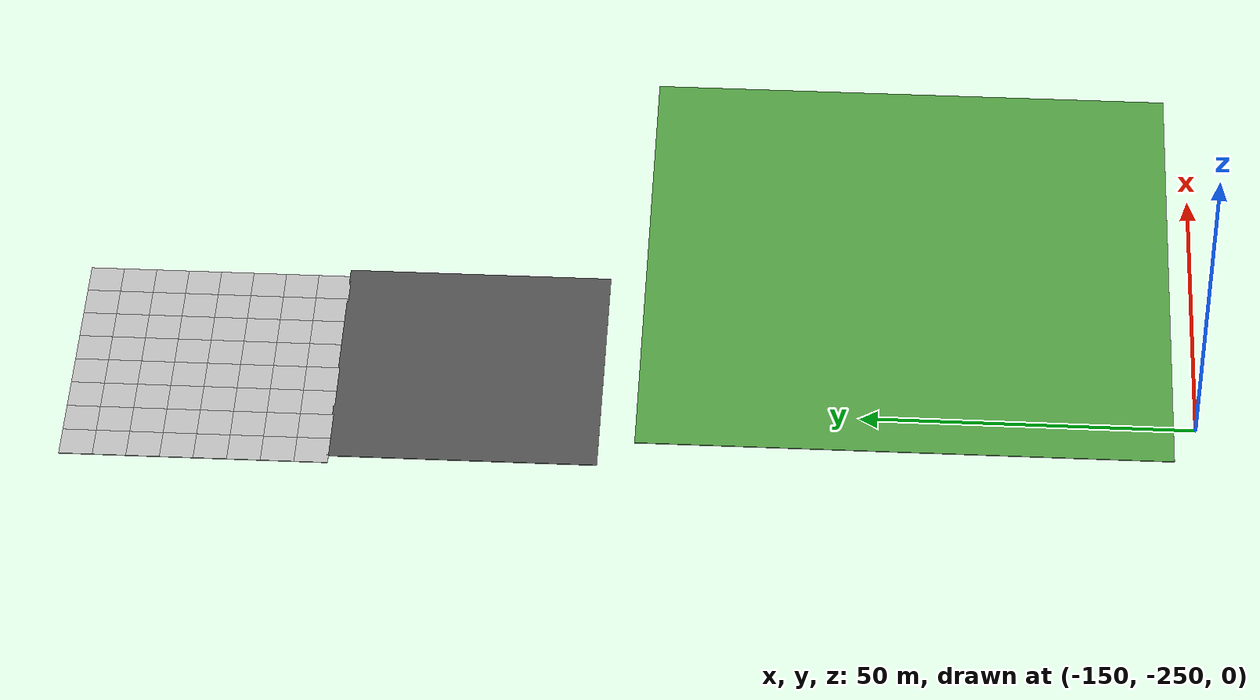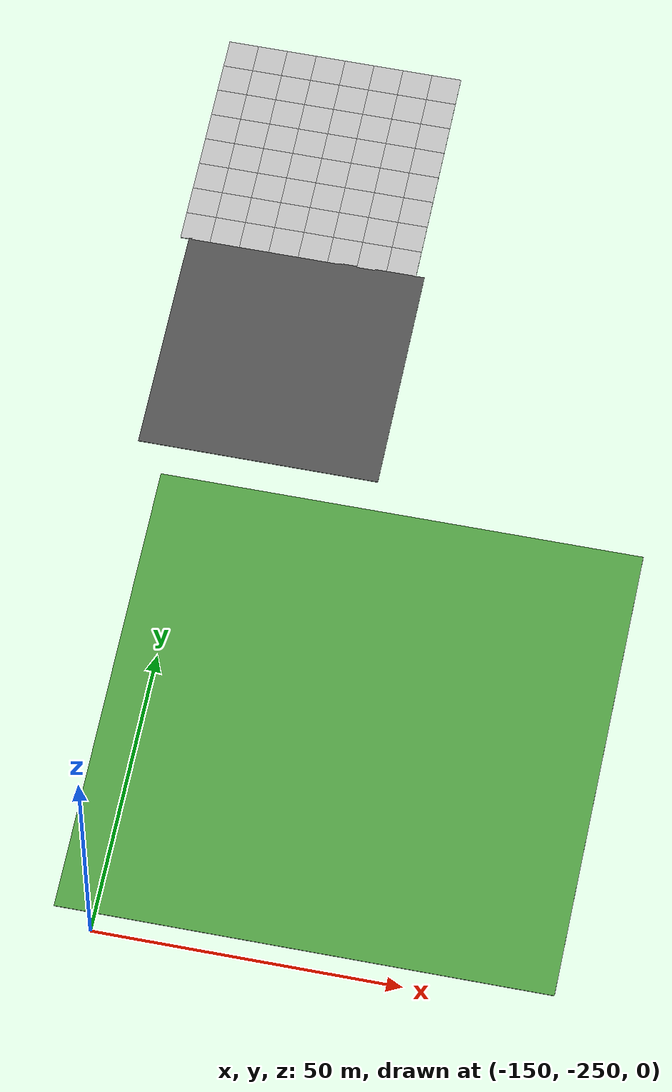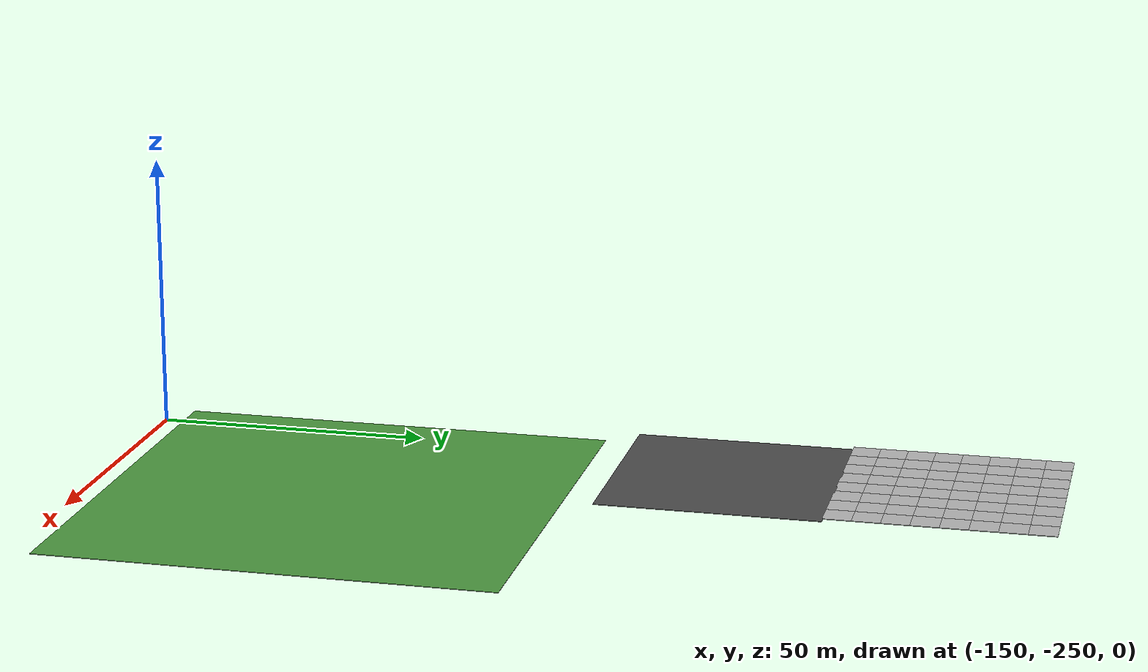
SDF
<sdf version="1.7">
 <world name="default">
  <model name="asphalt_plane_40x40_2">
   <pose>-141.521 -141.375 -0.05 0 -0 0</pose>
   <static>1</static>
   <link name="link">
    <collision name="collision"><geometry><box><size>40 40 0.1</size></box></geometry></collision>
    <visual name="visual">
     <cast_shadows>0</cast_shadows>
     <geometry><box><size>40 40 0.1</size></box></geometry>
     <material>
      <script>
       <uri>model://asphalt_plane_40x40/materials/scripts</uri>
       <uri>model://asphalt_plane_40x40/materials/textures</uri>
       <name>vrc/asphalt</name>
      </script>
     </material>
    </visual>
   </link>
  </model>
  <model name="grass_plane_80x80_11">
   <pose>-116.565 -206.733 -0.05 0 -0 0</pose>
   <static>1</static>
   <link name="link">
    <collision name="collision"><geometry><box><size>80 80 0.1</size></box></geometry></collision>
    <visual name="grass">
     <cast_shadows>0</cast_shadows>
     <geometry><box><size>80 80 0.1</size></box></geometry>
     <material>
      <script><uri>file://media/materials/scripts/gazebo.material</uri><name>Gazebo/Grass</name></script>
     </material>
    </visual>
   </link>
  </model>
  <model name="mud_plane_40x40_7">
   <model name="mud_plane_20x20">
    <model name="mud_plane">
     <static>1</static>
     <link name="link">
      <collision name="collision"><geometry><box><size>10 10 0.1</size></box></geometry></collision>
      <visual name="visual_1">
       <pose>-2.5 2.5 -0.05 0 -0 0</pose>
       <cast_shadows>0</cast_shadows>
       <geometry><box><size>5 5 0.1</size></box></geometry>
       <material>
        <script>
         <uri>model://mud_plane/materials/scripts</uri>
         <uri>model://mud_plane/materials/textures</uri>
         <name>vrc/mud</name>
        </script>
       </material>
      </visual>
      <visual name="visual_2">
       <pose>2.5 2.5 -0.05 0 -0 0</pose>
       <cast_shadows>0</cast_shadows>
       <geometry><box><size>5 5 0.1</size></box></geometry>
       <material>
        <script>
         <uri>model://mud_plane/materials/scripts</uri>
         <uri>model://mud_plane/materials/textures</uri>
         <name>vrc/mud</name>
        </script>
       </material>
      </visual>
      <visual name="visual_3">
       <pose>2.5 -2.5 -0.05 0 -0 0</pose>
       <cast_shadows>0</cast_shadows>
       <geometry><box><size>5 5 0.1</size></box></geometry>
       <material>
        <script>
         <uri>model://mud_plane/materials/scripts</uri>
         <uri>model://mud_plane/materials/textures</uri>
         <name>vrc/mud</name>
        </script>
       </material>
      </visual>
      <visual name="visual_4">
       <pose>-2.5 -2.5 -0.05 0 -0 0</pose>
       <cast_shadows>0</cast_shadows>
       <geometry><box><size>5 5 0.1</size></box></geometry>
       <material>
        <script>
         <uri>model://mud_plane/materials/scripts</uri>
         <uri>model://mud_plane/materials/textures</uri>
         <name>vrc/mud</name>
        </script>
       </material>
      </visual>
     </link>
     <pose>-4.99986 -4.99991 0 0 -0 0</pose>
    </model>
    <model name="mud_plane_0">
     <static>1</static>
     <link name="link">
      <collision name="collision"><geometry><box><size>10 10 0.1</size></box></geometry></collision>
      <visual name="visual_1">
       <pose>-2.5 2.5 -0.05 0 -0 0</pose>
       <cast_shadows>0</cast_shadows>
       <geometry><box><size>5 5 0.1</size></box></geometry>
       <material>
        <script>
         <uri>model://mud_plane/materials/scripts</uri>
         <uri>model://mud_plane/materials/textures</uri>
         <name>vrc/mud</name>
        </script>
       </material>
      </visual>
      <visual name="visual_2">
       <pose>2.5 2.5 -0.05 0 -0 0</pose>
       <cast_shadows>0</cast_shadows>
       <geometry><box><size>5 5 0.1</size></box></geometry>
       <material>
        <script>
         <uri>model://mud_plane/materials/scripts</uri>
         <uri>model://mud_plane/materials/textures</uri>
         <name>vrc/mud</name>
        </script>
       </material>
      </visual>
      <visual name="visual_3">
       <pose>2.5 -2.5 -0.05 0 -0 0</pose>
       <cast_shadows>0</cast_shadows>
       <geometry><box><size>5 5 0.1</size></box></geometry>
       <material>
        <script>
         <uri>model://mud_plane/materials/scripts</uri>
         <uri>model://mud_plane/materials/textures</uri>
         <name>vrc/mud</name>
        </script>
       </material>
      </visual>
      <visual name="visual_4">
       <pose>-2.5 -2.5 -0.05 0 -0 0</pose>
       <cast_shadows>0</cast_shadows>
       <geometry><box><size>5 5 0.1</size></box></geometry>
       <material>
        <script>
         <uri>model://mud_plane/materials/scripts</uri>
         <uri>model://mud_plane/materials/textures</uri>
         <name>vrc/mud</name>
        </script>
       </material>
      </visual>
     </link>
     <pose>-4.99946 4.99954 0 0 -0 0</pose>
    </model>
    <model name="mud_plane_1">
     <static>1</static>
     <link name="link">
      <collision name="collision"><geometry><box><size>10 10 0.1</size></box></geometry></collision>
      <visual name="visual_1">
       <pose>-2.5 2.5 -0.05 0 -0 0</pose>
       <cast_shadows>0</cast_shadows>
       <geometry><box><size>5 5 0.1</size></box></geometry>
       <material>
        <script>
         <uri>model://mud_plane/materials/scripts</uri>
         <uri>model://mud_plane/materials/textures</uri>
         <name>vrc/mud</name>
        </script>
       </material>
      </visual>
      <visual name="visual_2">
       <pose>2.5 2.5 -0.05 0 -0 0</pose>
       <cast_shadows>0</cast_shadows>
       <geometry><box><size>5 5 0.1</size></box></geometry>
       <material>
        <script>
         <uri>model://mud_plane/materials/scripts</uri>
         <uri>model://mud_plane/materials/textures</uri>
         <name>vrc/mud</name>
        </script>
       </material>
      </visual>
      <visual name="visual_3">
       <pose>2.5 -2.5 -0.05 0 -0 0</pose>
       <cast_shadows>0</cast_shadows>
       <geometry><box><size>5 5 0.1</size></box></geometry>
       <material>
        <script>
         <uri>model://mud_plane/materials/scripts</uri>
         <uri>model://mud_plane/materials/textures</uri>
         <name>vrc/mud</name>
        </script>
       </material>
      </visual>
      <visual name="visual_4">
       <pose>-2.5 -2.5 -0.05 0 -0 0</pose>
       <cast_shadows>0</cast_shadows>
       <geometry><box><size>5 5 0.1</size></box></geometry>
       <material>
        <script>
         <uri>model://mud_plane/materials/scripts</uri>
         <uri>model://mud_plane/materials/textures</uri>
         <name>vrc/mud</name>
        </script>
       </material>
      </visual>
     </link>
     <pose>4.99964 -4.99949 0 0 -0 0</pose>
    </model>
    <model name="mud_plane_2">
     <static>1</static>
     <link name="link">
      <collision name="collision"><geometry><box><size>10 10 0.1</size></box></geometry></collision>
      <visual name="visual_1">
       <pose>-2.5 2.5 -0.05 0 -0 0</pose>
       <cast_shadows>0</cast_shadows>
       <geometry><box><size>5 5 0.1</size></box></geometry>
       <material>
        <script>
         <uri>model://mud_plane/materials/scripts</uri>
         <uri>model://mud_plane/materials/textures</uri>
         <name>vrc/mud</name>
        </script>
       </material>
      </visual>
      <visual name="visual_2">
       <pose>2.5 2.5 -0.05 0 -0 0</pose>
       <cast_shadows>0</cast_shadows>
       <geometry><box><size>5 5 0.1</size></box></geometry>
       <material>
        <script>
         <uri>model://mud_plane/materials/scripts</uri>
         <uri>model://mud_plane/materials/textures</uri>
         <name>vrc/mud</name>
        </script>
       </material>
      </visual>
      <visual name="visual_3">
       <pose>2.5 -2.5 -0.05 0 -0 0</pose>
       <cast_shadows>0</cast_shadows>
       <geometry><box><size>5 5 0.1</size></box></geometry>
       <material>
        <script>
         <uri>model://mud_plane/materials/scripts</uri>
         <uri>model://mud_plane/materials/textures</uri>
         <name>vrc/mud</name>
        </script>
       </material>
      </visual>
      <visual name="visual_4">
       <pose>-2.5 -2.5 -0.05 0 -0 0</pose>
       <cast_shadows>0</cast_shadows>
       <geometry><box><size>5 5 0.1</size></box></geometry>
       <material>
        <script>
         <uri>model://mud_plane/materials/scripts</uri>
         <uri>model://mud_plane/materials/textures</uri>
         <name>vrc/mud</name>
        </script>
       </material>
      </visual>
     </link>
     <pose>4.99967 4.99986 0 0 -0 0</pose>
    </model>
    <static>0</static>
    <pose>-9.99895 9.99843 0 0 -0 0</pose>
   </model>
   <model name="mud_plane_20x20_0">
    <model name="mud_plane">
     <static>1</static>
     <link name="link">
      <collision name="collision"><geometry><box><size>10 10 0.1</size></box></geometry></collision>
      <visual name="visual_1">
       <pose>-2.5 2.5 -0.05 0 -0 0</pose>
       <cast_shadows>0</cast_shadows>
       <geometry><box><size>5 5 0.1</size></box></geometry>
       <material>
        <script>
         <uri>model://mud_plane/materials/scripts</uri>
         <uri>model://mud_plane/materials/textures</uri>
         <name>vrc/mud</name>
        </script>
       </material>
      </visual>
      <visual name="visual_2">
       <pose>2.5 2.5 -0.05 0 -0 0</pose>
       <cast_shadows>0</cast_shadows>
       <geometry><box><size>5 5 0.1</size></box></geometry>
       <material>
        <script>
         <uri>model://mud_plane/materials/scripts</uri>
         <uri>model://mud_plane/materials/textures</uri>
         <name>vrc/mud</name>
        </script>
       </material>
      </visual>
      <visual name="visual_3">
       <pose>2.5 -2.5 -0.05 0 -0 0</pose>
       <cast_shadows>0</cast_shadows>
       <geometry><box><size>5 5 0.1</size></box></geometry>
       <material>
        <script>
         <uri>model://mud_plane/materials/scripts</uri>
         <uri>model://mud_plane/materials/textures</uri>
         <name>vrc/mud</name>
        </script>
       </material>
      </visual>
      <visual name="visual_4">
       <pose>-2.5 -2.5 -0.05 0 -0 0</pose>
       <cast_shadows>0</cast_shadows>
       <geometry><box><size>5 5 0.1</size></box></geometry>
       <material>
        <script>
         <uri>model://mud_plane/materials/scripts</uri>
         <uri>model://mud_plane/materials/textures</uri>
         <name>vrc/mud</name>
        </script>
       </material>
      </visual>
     </link>
     <pose>-4.99986 -4.99991 0 0 -0 0</pose>
    </model>
    <model name="mud_plane_0">
     <static>1</static>
     <link name="link">
      <collision name="collision"><geometry><box><size>10 10 0.1</size></box></geometry></collision>
      <visual name="visual_1">
       <pose>-2.5 2.5 -0.05 0 -0 0</pose>
       <cast_shadows>0</cast_shadows>
       <geometry><box><size>5 5 0.1</size></box></geometry>
       <material>
        <script>
         <uri>model://mud_plane/materials/scripts</uri>
         <uri>model://mud_plane/materials/textures</uri>
         <name>vrc/mud</name>
        </script>
       </material>
      </visual>
      <visual name="visual_2">
       <pose>2.5 2.5 -0.05 0 -0 0</pose>
       <cast_shadows>0</cast_shadows>
       <geometry><box><size>5 5 0.1</size></box></geometry>
       <material>
        <script>
         <uri>model://mud_plane/materials/scripts</uri>
         <uri>model://mud_plane/materials/textures</uri>
         <name>vrc/mud</name>
        </script>
       </material>
      </visual>
      <visual name="visual_3">
       <pose>2.5 -2.5 -0.05 0 -0 0</pose>
       <cast_shadows>0</cast_shadows>
       <geometry><box><size>5 5 0.1</size></box></geometry>
       <material>
        <script>
         <uri>model://mud_plane/materials/scripts</uri>
         <uri>model://mud_plane/materials/textures</uri>
         <name>vrc/mud</name>
        </script>
       </material>
      </visual>
      <visual name="visual_4">
       <pose>-2.5 -2.5 -0.05 0 -0 0</pose>
       <cast_shadows>0</cast_shadows>
       <geometry><box><size>5 5 0.1</size></box></geometry>
       <material>
        <script>
         <uri>model://mud_plane/materials/scripts</uri>
         <uri>model://mud_plane/materials/textures</uri>
         <name>vrc/mud</name>
        </script>
       </material>
      </visual>
     </link>
     <pose>-4.99946 4.99954 0 0 -0 0</pose>
    </model>
    <model name="mud_plane_1">
     <static>1</static>
     <link name="link">
      <collision name="collision"><geometry><box><size>10 10 0.1</size></box></geometry></collision>
      <visual name="visual_1">
       <pose>-2.5 2.5 -0.05 0 -0 0</pose>
       <cast_shadows>0</cast_shadows>
       <geometry><box><size>5 5 0.1</size></box></geometry>
       <material>
        <script>
         <uri>model://mud_plane/materials/scripts</uri>
         <uri>model://mud_plane/materials/textures</uri>
         <name>vrc/mud</name>
        </script>
       </material>
      </visual>
      <visual name="visual_2">
       <pose>2.5 2.5 -0.05 0 -0 0</pose>
       <cast_shadows>0</cast_shadows>
       <geometry><box><size>5 5 0.1</size></box></geometry>
       <material>
        <script>
         <uri>model://mud_plane/materials/scripts</uri>
         <uri>model://mud_plane/materials/textures</uri>
         <name>vrc/mud</name>
        </script>
       </material>
      </visual>
      <visual name="visual_3">
       <pose>2.5 -2.5 -0.05 0 -0 0</pose>
       <cast_shadows>0</cast_shadows>
       <geometry><box><size>5 5 0.1</size></box></geometry>
       <material>
        <script>
         <uri>model://mud_plane/materials/scripts</uri>
         <uri>model://mud_plane/materials/textures</uri>
         <name>vrc/mud</name>
        </script>
       </material>
      </visual>
      <visual name="visual_4">
       <pose>-2.5 -2.5 -0.05 0 -0 0</pose>
       <cast_shadows>0</cast_shadows>
       <geometry><box><size>5 5 0.1</size></box></geometry>
       <material>
        <script>
         <uri>model://mud_plane/materials/scripts</uri>
         <uri>model://mud_plane/materials/textures</uri>
         <name>vrc/mud</name>
        </script>
       </material>
      </visual>
     </link>
     <pose>4.99964 -4.99949 0 0 -0 0</pose>
    </model>
    <model name="mud_plane_2">
     <static>1</static>
     <link name="link">
      <collision name="collision"><geometry><box><size>10 10 0.1</size></box></geometry></collision>
      <visual name="visual_1">
       <pose>-2.5 2.5 -0.05 0 -0 0</pose>
       <cast_shadows>0</cast_shadows>
       <geometry><box><size>5 5 0.1</size></box></geometry>
       <material>
        <script>
         <uri>model://mud_plane/materials/scripts</uri>
         <uri>model://mud_plane/materials/textures</uri>
         <name>vrc/mud</name>
        </script>
       </material>
      </visual>
      <visual name="visual_2">
       <pose>2.5 2.5 -0.05 0 -0 0</pose>
       <cast_shadows>0</cast_shadows>
       <geometry><box><size>5 5 0.1</size></box></geometry>
       <material>
        <script>
         <uri>model://mud_plane/materials/scripts</uri>
         <uri>model://mud_plane/materials/textures</uri>
         <name>vrc/mud</name>
        </script>
       </material>
      </visual>
      <visual name="visual_3">
       <pose>2.5 -2.5 -0.05 0 -0 0</pose>
       <cast_shadows>0</cast_shadows>
       <geometry><box><size>5 5 0.1</size></box></geometry>
       <material>
        <script>
         <uri>model://mud_plane/materials/scripts</uri>
         <uri>model://mud_plane/materials/textures</uri>
         <name>vrc/mud</name>
        </script>
       </material>
      </visual>
      <visual name="visual_4">
       <pose>-2.5 -2.5 -0.05 0 -0 0</pose>
       <cast_shadows>0</cast_shadows>
       <geometry><box><size>5 5 0.1</size></box></geometry>
       <material>
        <script>
         <uri>model://mud_plane/materials/scripts</uri>
         <uri>model://mud_plane/materials/textures</uri>
         <name>vrc/mud</name>
        </script>
       </material>
      </visual>
     </link>
     <pose>4.99967 4.99986 0 0 -0 0</pose>
    </model>
    <static>0</static>
    <pose>9.99933 9.9997 0 0 -0 0</pose>
   </model>
   <model name="mud_plane_20x20_1">
    <model name="mud_plane">
     <static>1</static>
     <link name="link">
      <collision name="collision"><geometry><box><size>10 10 0.1</size></box></geometry></collision>
      <visual name="visual_1">
       <pose>-2.5 2.5 -0.05 0 -0 0</pose>
       <cast_shadows>0</cast_shadows>
       <geometry><box><size>5 5 0.1</size></box></geometry>
       <material>
        <script>
         <uri>model://mud_plane/materials/scripts</uri>
         <uri>model://mud_plane/materials/textures</uri>
         <name>vrc/mud</name>
        </script>
       </material>
      </visual>
      <visual name="visual_2">
       <pose>2.5 2.5 -0.05 0 -0 0</pose>
       <cast_shadows>0</cast_shadows>
       <geometry><box><size>5 5 0.1</size></box></geometry>
       <material>
        <script>
         <uri>model://mud_plane/materials/scripts</uri>
         <uri>model://mud_plane/materials/textures</uri>
         <name>vrc/mud</name>
        </script>
       </material>
      </visual>
      <visual name="visual_3">
       <pose>2.5 -2.5 -0.05 0 -0 0</pose>
       <cast_shadows>0</cast_shadows>
       <geometry><box><size>5 5 0.1</size></box></geometry>
       <material>
        <script>
         <uri>model://mud_plane/materials/scripts</uri>
         <uri>model://mud_plane/materials/textures</uri>
         <name>vrc/mud</name>
        </script>
       </material>
      </visual>
      <visual name="visual_4">
       <pose>-2.5 -2.5 -0.05 0 -0 0</pose>
       <cast_shadows>0</cast_shadows>
       <geometry><box><size>5 5 0.1</size></box></geometry>
       <material>
        <script>
         <uri>model://mud_plane/materials/scripts</uri>
         <uri>model://mud_plane/materials/textures</uri>
         <name>vrc/mud</name>
        </script>
       </material>
      </visual>
     </link>
     <pose>-4.99986 -4.99991 0 0 -0 0</pose>
    </model>
    <model name="mud_plane_0">
     <static>1</static>
     <link name="link">
      <collision name="collision"><geometry><box><size>10 10 0.1</size></box></geometry></collision>
      <visual name="visual_1">
       <pose>-2.5 2.5 -0.05 0 -0 0</pose>
       <cast_shadows>0</cast_shadows>
       <geometry><box><size>5 5 0.1</size></box></geometry>
       <material>
        <script>
         <uri>model://mud_plane/materials/scripts</uri>
         <uri>model://mud_plane/materials/textures</uri>
         <name>vrc/mud</name>
        </script>
       </material>
      </visual>
      <visual name="visual_2">
       <pose>2.5 2.5 -0.05 0 -0 0</pose>
       <cast_shadows>0</cast_shadows>
       <geometry><box><size>5 5 0.1</size></box></geometry>
       <material>
        <script>
         <uri>model://mud_plane/materials/scripts</uri>
         <uri>model://mud_plane/materials/textures</uri>
         <name>vrc/mud</name>
        </script>
       </material>
      </visual>
      <visual name="visual_3">
       <pose>2.5 -2.5 -0.05 0 -0 0</pose>
       <cast_shadows>0</cast_shadows>
       <geometry><box><size>5 5 0.1</size></box></geometry>
       <material>
        <script>
         <uri>model://mud_plane/materials/scripts</uri>
         <uri>model://mud_plane/materials/textures</uri>
         <name>vrc/mud</name>
        </script>
       </material>
      </visual>
      <visual name="visual_4">
       <pose>-2.5 -2.5 -0.05 0 -0 0</pose>
       <cast_shadows>0</cast_shadows>
       <geometry><box><size>5 5 0.1</size></box></geometry>
       <material>
        <script>
         <uri>model://mud_plane/materials/scripts</uri>
         <uri>model://mud_plane/materials/textures</uri>
         <name>vrc/mud</name>
        </script>
       </material>
      </visual>
     </link>
     <pose>-4.99946 4.99954 0 0 -0 0</pose>
    </model>
    <model name="mud_plane_1">
     <static>1</static>
     <link name="link">
      <collision name="collision"><geometry><box><size>10 10 0.1</size></box></geometry></collision>
      <visual name="visual_1">
       <pose>-2.5 2.5 -0.05 0 -0 0</pose>
       <cast_shadows>0</cast_shadows>
       <geometry><box><size>5 5 0.1</size></box></geometry>
       <material>
        <script>
         <uri>model://mud_plane/materials/scripts</uri>
         <uri>model://mud_plane/materials/textures</uri>
         <name>vrc/mud</name>
        </script>
       </material>
      </visual>
      <visual name="visual_2">
       <pose>2.5 2.5 -0.05 0 -0 0</pose>
       <cast_shadows>0</cast_shadows>
       <geometry><box><size>5 5 0.1</size></box></geometry>
       <material>
        <script>
         <uri>model://mud_plane/materials/scripts</uri>
         <uri>model://mud_plane/materials/textures</uri>
         <name>vrc/mud</name>
        </script>
       </material>
      </visual>
      <visual name="visual_3">
       <pose>2.5 -2.5 -0.05 0 -0 0</pose>
       <cast_shadows>0</cast_shadows>
       <geometry><box><size>5 5 0.1</size></box></geometry>
       <material>
        <script>
         <uri>model://mud_plane/materials/scripts</uri>
         <uri>model://mud_plane/materials/textures</uri>
         <name>vrc/mud</name>
        </script>
       </material>
      </visual>
      <visual name="visual_4">
       <pose>-2.5 -2.5 -0.05 0 -0 0</pose>
       <cast_shadows>0</cast_shadows>
       <geometry><box><size>5 5 0.1</size></box></geometry>
       <material>
        <script>
         <uri>model://mud_plane/materials/scripts</uri>
         <uri>model://mud_plane/materials/textures</uri>
         <name>vrc/mud</name>
        </script>
       </material>
      </visual>
     </link>
     <pose>4.99964 -4.99949 0 0 -0 0</pose>
    </model>
    <model name="mud_plane_2">
     <static>1</static>
     <link name="link">
      <collision name="collision"><geometry><box><size>10 10 0.1</size></box></geometry></collision>
      <visual name="visual_1">
       <pose>-2.5 2.5 -0.05 0 -0 0</pose>
       <cast_shadows>0</cast_shadows>
       <geometry><box><size>5 5 0.1</size></box></geometry>
       <material>
        <script>
         <uri>model://mud_plane/materials/scripts</uri>
         <uri>model://mud_plane/materials/textures</uri>
         <name>vrc/mud</name>
        </script>
       </material>
      </visual>
      <visual name="visual_2">
       <pose>2.5 2.5 -0.05 0 -0 0</pose>
       <cast_shadows>0</cast_shadows>
       <geometry><box><size>5 5 0.1</size></box></geometry>
       <material>
        <script>
         <uri>model://mud_plane/materials/scripts</uri>
         <uri>model://mud_plane/materials/textures</uri>
         <name>vrc/mud</name>
        </script>
       </material>
      </visual>
      <visual name="visual_3">
       <pose>2.5 -2.5 -0.05 0 -0 0</pose>
       <cast_shadows>0</cast_shadows>
       <geometry><box><size>5 5 0.1</size></box></geometry>
       <material>
        <script>
         <uri>model://mud_plane/materials/scripts</uri>
         <uri>model://mud_plane/materials/textures</uri>
         <name>vrc/mud</name>
        </script>
       </material>
      </visual>
      <visual name="visual_4">
       <pose>-2.5 -2.5 -0.05 0 -0 0</pose>
       <cast_shadows>0</cast_shadows>
       <geometry><box><size>5 5 0.1</size></box></geometry>
       <material>
        <script>
         <uri>model://mud_plane/materials/scripts</uri>
         <uri>model://mud_plane/materials/textures</uri>
         <name>vrc/mud</name>
        </script>
       </material>
      </visual>
     </link>
     <pose>4.99967 4.99986 0 0 -0 0</pose>
    </model>
    <static>0</static>
    <pose>9.9993 -9.99877 0 0 -0 0</pose>
   </model>
   <model name="mud_plane_20x20_2">
    <model name="mud_plane">
     <static>1</static>
     <link name="link">
      <collision name="collision"><geometry><box><size>10 10 0.1</size></box></geometry></collision>
      <visual name="visual_1">
       <pose>-2.5 2.5 -0.05 0 -0 0</pose>
       <cast_shadows>0</cast_shadows>
       <geometry><box><size>5 5 0.1</size></box></geometry>
       <material>
        <script>
         <uri>model://mud_plane/materials/scripts</uri>
         <uri>model://mud_plane/materials/textures</uri>
         <name>vrc/mud</name>
        </script>
       </material>
      </visual>
      <visual name="visual_2">
       <pose>2.5 2.5 -0.05 0 -0 0</pose>
       <cast_shadows>0</cast_shadows>
       <geometry><box><size>5 5 0.1</size></box></geometry>
       <material>
        <script>
         <uri>model://mud_plane/materials/scripts</uri>
         <uri>model://mud_plane/materials/textures</uri>
         <name>vrc/mud</name>
        </script>
       </material>
      </visual>
      <visual name="visual_3">
       <pose>2.5 -2.5 -0.05 0 -0 0</pose>
       <cast_shadows>0</cast_shadows>
       <geometry><box><size>5 5 0.1</size></box></geometry>
       <material>
        <script>
         <uri>model://mud_plane/materials/scripts</uri>
         <uri>model://mud_plane/materials/textures</uri>
         <name>vrc/mud</name>
        </script>
       </material>
      </visual>
      <visual name="visual_4">
       <pose>-2.5 -2.5 -0.05 0 -0 0</pose>
       <cast_shadows>0</cast_shadows>
       <geometry><box><size>5 5 0.1</size></box></geometry>
       <material>
        <script>
         <uri>model://mud_plane/materials/scripts</uri>
         <uri>model://mud_plane/materials/textures</uri>
         <name>vrc/mud</name>
        </script>
       </material>
      </visual>
     </link>
     <pose>-4.99986 -4.99991 0 0 -0 0</pose>
    </model>
    <model name="mud_plane_0">
     <static>1</static>
     <link name="link">
      <collision name="collision"><geometry><box><size>10 10 0.1</size></box></geometry></collision>
      <visual name="visual_1">
       <pose>-2.5 2.5 -0.05 0 -0 0</pose>
       <cast_shadows>0</cast_shadows>
       <geometry><box><size>5 5 0.1</size></box></geometry>
       <material>
        <script>
         <uri>model://mud_plane/materials/scripts</uri>
         <uri>model://mud_plane/materials/textures</uri>
         <name>vrc/mud</name>
        </script>
       </material>
      </visual>
      <visual name="visual_2">
       <pose>2.5 2.5 -0.05 0 -0 0</pose>
       <cast_shadows>0</cast_shadows>
       <geometry><box><size>5 5 0.1</size></box></geometry>
       <material>
        <script>
         <uri>model://mud_plane/materials/scripts</uri>
         <uri>model://mud_plane/materials/textures</uri>
         <name>vrc/mud</name>
        </script>
       </material>
      </visual>
      <visual name="visual_3">
       <pose>2.5 -2.5 -0.05 0 -0 0</pose>
       <cast_shadows>0</cast_shadows>
       <geometry><box><size>5 5 0.1</size></box></geometry>
       <material>
        <script>
         <uri>model://mud_plane/materials/scripts</uri>
         <uri>model://mud_plane/materials/textures</uri>
         <name>vrc/mud</name>
        </script>
       </material>
      </visual>
      <visual name="visual_4">
       <pose>-2.5 -2.5 -0.05 0 -0 0</pose>
       <cast_shadows>0</cast_shadows>
       <geometry><box><size>5 5 0.1</size></box></geometry>
       <material>
        <script>
         <uri>model://mud_plane/materials/scripts</uri>
         <uri>model://mud_plane/materials/textures</uri>
         <name>vrc/mud</name>
        </script>
       </material>
      </visual>
     </link>
     <pose>-4.99946 4.99954 0 0 -0 0</pose>
    </model>
    <model name="mud_plane_1">
     <static>1</static>
     <link name="link">
      <collision name="collision"><geometry><box><size>10 10 0.1</size></box></geometry></collision>
      <visual name="visual_1">
       <pose>-2.5 2.5 -0.05 0 -0 0</pose>
       <cast_shadows>0</cast_shadows>
       <geometry><box><size>5 5 0.1</size></box></geometry>
       <material>
        <script>
         <uri>model://mud_plane/materials/scripts</uri>
         <uri>model://mud_plane/materials/textures</uri>
         <name>vrc/mud</name>
        </script>
       </material>
      </visual>
      <visual name="visual_2">
       <pose>2.5 2.5 -0.05 0 -0 0</pose>
       <cast_shadows>0</cast_shadows>
       <geometry><box><size>5 5 0.1</size></box></geometry>
       <material>
        <script>
         <uri>model://mud_plane/materials/scripts</uri>
         <uri>model://mud_plane/materials/textures</uri>
         <name>vrc/mud</name>
        </script>
       </material>
      </visual>
      <visual name="visual_3">
       <pose>2.5 -2.5 -0.05 0 -0 0</pose>
       <cast_shadows>0</cast_shadows>
       <geometry><box><size>5 5 0.1</size></box></geometry>
       <material>
        <script>
         <uri>model://mud_plane/materials/scripts</uri>
         <uri>model://mud_plane/materials/textures</uri>
         <name>vrc/mud</name>
        </script>
       </material>
      </visual>
      <visual name="visual_4">
       <pose>-2.5 -2.5 -0.05 0 -0 0</pose>
       <cast_shadows>0</cast_shadows>
       <geometry><box><size>5 5 0.1</size></box></geometry>
       <material>
        <script>
         <uri>model://mud_plane/materials/scripts</uri>
         <uri>model://mud_plane/materials/textures</uri>
         <name>vrc/mud</name>
        </script>
       </material>
      </visual>
     </link>
     <pose>4.99964 -4.99949 0 0 -0 0</pose>
    </model>
    <model name="mud_plane_2">
     <static>1</static>
     <link name="link">
      <collision name="collision"><geometry><box><size>10 10 0.1</size></box></geometry></collision>
      <visual name="visual_1">
       <pose>-2.5 2.5 -0.05 0 -0 0</pose>
       <cast_shadows>0</cast_shadows>
       <geometry><box><size>5 5 0.1</size></box></geometry>
       <material>
        <script>
         <uri>model://mud_plane/materials/scripts</uri>
         <uri>model://mud_plane/materials/textures</uri>
         <name>vrc/mud</name>
        </script>
       </material>
      </visual>
      <visual name="visual_2">
       <pose>2.5 2.5 -0.05 0 -0 0</pose>
       <cast_shadows>0</cast_shadows>
       <geometry><box><size>5 5 0.1</size></box></geometry>
       <material>
        <script>
         <uri>model://mud_plane/materials/scripts</uri>
         <uri>model://mud_plane/materials/textures</uri>
         <name>vrc/mud</name>
        </script>
       </material>
      </visual>
      <visual name="visual_3">
       <pose>2.5 -2.5 -0.05 0 -0 0</pose>
       <cast_shadows>0</cast_shadows>
       <geometry><box><size>5 5 0.1</size></box></geometry>
       <material>
        <script>
         <uri>model://mud_plane/materials/scripts</uri>
         <uri>model://mud_plane/materials/textures</uri>
         <name>vrc/mud</name>
        </script>
       </material>
      </visual>
      <visual name="visual_4">
       <pose>-2.5 -2.5 -0.05 0 -0 0</pose>
       <cast_shadows>0</cast_shadows>
       <geometry><box><size>5 5 0.1</size></box></geometry>
       <material>
        <script>
         <uri>model://mud_plane/materials/scripts</uri>
         <uri>model://mud_plane/materials/textures</uri>
         <name>vrc/mud</name>
        </script>
       </material>
      </visual>
     </link>
     <pose>4.99967 4.99986 0 0 -0 0</pose>
    </model>
    <static>0</static>
    <pose>-9.99969 -9.99935 0 0 -0 0</pose>
   </model>
   <static>0</static>
   <pose>-142.937 -101.57 0 0 -0 0</pose>
  </model>
 </world>
</sdf>
